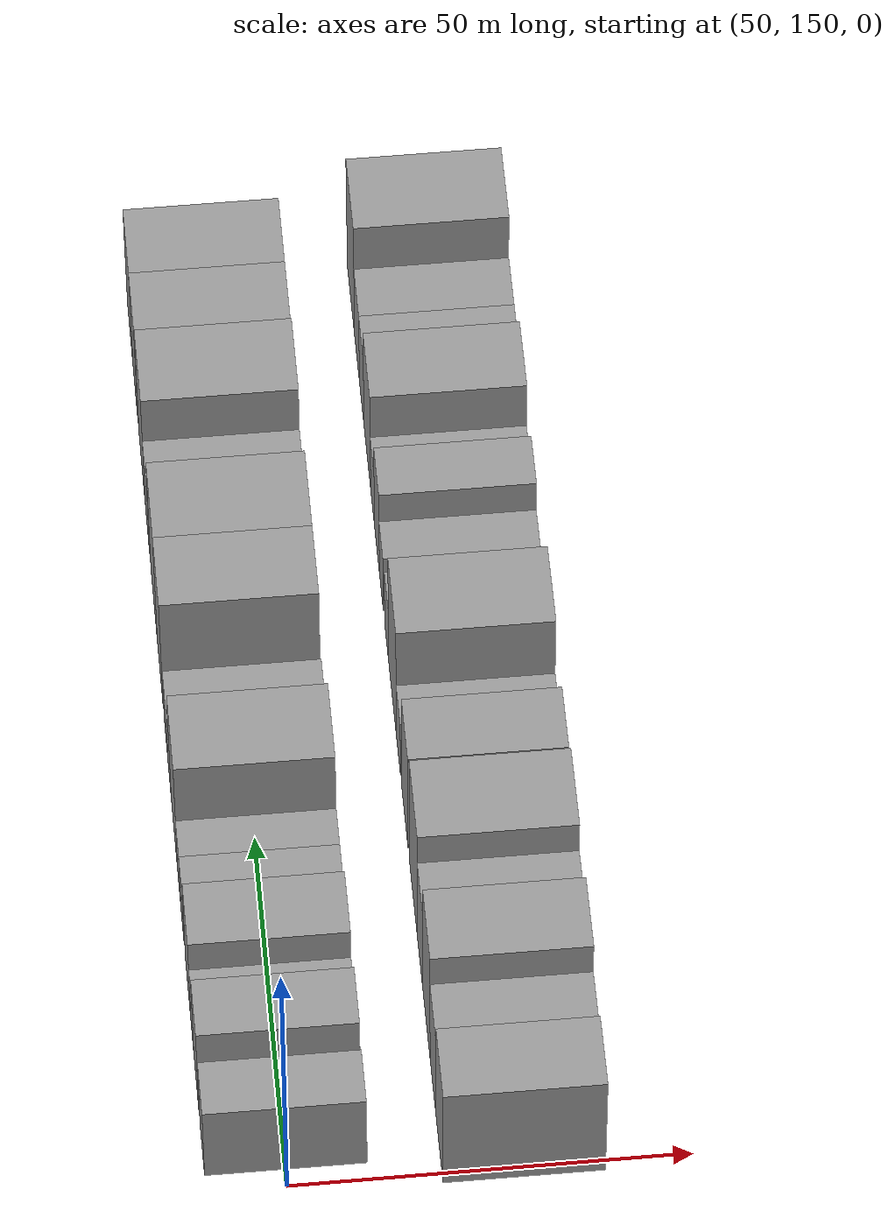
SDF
<sdf version="1.6">
 <world name="default">
  <model name="building_45">
   <static>1</static>
   <pose>50.0000 156.0411 0 0.000000 0.000000 0.000000</pose>
   <link name="link">
    <pose>0 0 7.50 0 0 0</pose>
    <collision name="collision"><geometry><box><size>20.0000 7.3334 15.0000</size></box></geometry></collision>
    <visual name="visual">
     <cast_shadows>0</cast_shadows>
     <geometry><box><size>20.0000 7.3334 15.0000</size></box></geometry>
     <material>
      <script>
       <uri>model://grey_wall/materials/scripts</uri>
       <uri>model://grey_wall/materials/textures</uri>
       <name>vrc/grey_wall</name>
      </script>
     </material>
    </visual>
   </link>
  </model>
  <model name="building_46">
   <static>1</static>
   <pose>50.0000 165.6689 0 0.000000 0.000000 0.000000</pose>
   <link name="link">
    <pose>0 0 9.00 0 0 0</pose>
    <collision name="collision"><geometry><box><size>20.0000 7.9223 18.0000</size></box></geometry></collision>
    <visual name="visual">
     <cast_shadows>0</cast_shadows>
     <geometry><box><size>20.0000 7.9223 18.0000</size></box></geometry>
     <material>
      <script>
       <uri>model://grey_wall/materials/scripts</uri>
       <uri>model://grey_wall/materials/textures</uri>
       <name>vrc/grey_wall</name>
      </script>
     </material>
    </visual>
   </link>
  </model>
  <model name="building_47">
   <static>1</static>
   <pose>50.0000 172.1185 0 0.000000 0.000000 0.000000</pose>
   <link name="link">
    <pose>0 0 6.00 0 0 0</pose>
    <collision name="collision"><geometry><box><size>20.0000 4.9769 12.0000</size></box></geometry></collision>
    <visual name="visual">
     <cast_shadows>0</cast_shadows>
     <geometry><box><size>20.0000 4.9769 12.0000</size></box></geometry>
     <material>
      <script>
       <uri>model://grey_wall/materials/scripts</uri>
       <uri>model://grey_wall/materials/textures</uri>
       <name>vrc/grey_wall</name>
      </script>
     </material>
    </visual>
   </link>
  </model>
  <model name="building_48">
   <static>1</static>
   <pose>50.0000 178.9828 0 0.000000 0.000000 0.000000</pose>
   <link name="link">
    <pose>0 0 9.00 0 0 0</pose>
    <collision name="collision"><geometry><box><size>20.0000 8.7516 18.0000</size></box></geometry></collision>
    <visual name="visual">
     <cast_shadows>0</cast_shadows>
     <geometry><box><size>20.0000 8.7516 18.0000</size></box></geometry>
     <material>
      <script>
       <uri>model://grey_wall/materials/scripts</uri>
       <uri>model://grey_wall/materials/textures</uri>
       <name>vrc/grey_wall</name>
      </script>
     </material>
    </visual>
   </link>
  </model>
  <model name="building_49">
   <static>1</static>
   <pose>50.0000 188.1513 0 0.000000 0.000000 0.000000</pose>
   <link name="link">
    <pose>0 0 6.00 0 0 0</pose>
    <collision name="collision"><geometry><box><size>20.0000 5.5853 12.0000</size></box></geometry></collision>
    <visual name="visual">
     <cast_shadows>0</cast_shadows>
     <geometry><box><size>20.0000 5.5853 12.0000</size></box></geometry>
     <material>
      <script>
       <uri>model://grey_wall/materials/scripts</uri>
       <uri>model://grey_wall/materials/textures</uri>
       <name>vrc/grey_wall</name>
      </script>
     </material>
    </visual>
   </link>
  </model>
  <model name="building_50">
   <static>1</static>
   <pose>50.0000 193.5602 0 0.000000 0.000000 0.000000</pose>
   <link name="link">
    <pose>0 0 6.00 0 0 0</pose>
    <collision name="collision"><geometry><box><size>20.0000 5.2325 12.0000</size></box></geometry></collision>
    <visual name="visual">
     <cast_shadows>0</cast_shadows>
     <geometry><box><size>20.0000 5.2325 12.0000</size></box></geometry>
     <material>
      <script>
       <uri>model://grey_wall/materials/scripts</uri>
       <uri>model://grey_wall/materials/textures</uri>
       <name>vrc/grey_wall</name>
      </script>
     </material>
    </visual>
   </link>
  </model>
  <model name="building_51">
   <static>1</static>
   <pose>50.0000 201.5715 0 0.000000 0.000000 0.000000</pose>
   <link name="link">
    <pose>0 0 12.00 0 0 0</pose>
    <collision name="collision"><geometry><box><size>20.0000 10.7901 24.0000</size></box></geometry></collision>
    <visual name="visual">
     <cast_shadows>0</cast_shadows>
     <geometry><box><size>20.0000 10.7901 24.0000</size></box></geometry>
     <material>
      <script>
       <uri>model://grey_wall/materials/scripts</uri>
       <uri>model://grey_wall/materials/textures</uri>
       <name>vrc/grey_wall</name>
      </script>
     </material>
    </visual>
   </link>
  </model>
  <model name="building_52">
   <static>1</static>
   <pose>50.0000 209.6448 0 0.000000 0.000000 0.000000</pose>
   <link name="link">
    <pose>0 0 6.00 0 0 0</pose>
    <collision name="collision"><geometry><box><size>20.0000 5.3565 12.0000</size></box></geometry></collision>
    <visual name="visual">
     <cast_shadows>0</cast_shadows>
     <geometry><box><size>20.0000 5.3565 12.0000</size></box></geometry>
     <material>
      <script>
       <uri>model://grey_wall/materials/scripts</uri>
       <uri>model://grey_wall/materials/textures</uri>
       <name>vrc/grey_wall</name>
      </script>
     </material>
    </visual>
   </link>
  </model>
  <model name="building_53">
   <static>1</static>
   <pose>50.0000 215.2984 0 0.000000 0.000000 0.000000</pose>
   <link name="link">
    <pose>0 0 6.00 0 0 0</pose>
    <collision name="collision"><geometry><box><size>20.0000 5.9508 12.0000</size></box></geometry></collision>
    <visual name="visual">
     <cast_shadows>0</cast_shadows>
     <geometry><box><size>20.0000 5.9508 12.0000</size></box></geometry>
     <material>
      <script>
       <uri>model://grey_wall/materials/scripts</uri>
       <uri>model://grey_wall/materials/textures</uri>
       <name>vrc/grey_wall</name>
      </script>
     </material>
    </visual>
   </link>
  </model>
  <model name="building_54">
   <static>1</static>
   <pose>50.0000 225.3693 0 0.000000 0.000000 0.000000</pose>
   <link name="link">
    <pose>0 0 12.00 0 0 0</pose>
    <collision name="collision"><geometry><box><size>20.0000 10.1909 24.0000</size></box></geometry></collision>
    <visual name="visual">
     <cast_shadows>0</cast_shadows>
     <geometry><box><size>20.0000 10.1909 24.0000</size></box></geometry>
     <material>
      <script>
       <uri>model://grey_wall/materials/scripts</uri>
       <uri>model://grey_wall/materials/textures</uri>
       <name>vrc/grey_wall</name>
      </script>
     </material>
    </visual>
   </link>
  </model>
  <model name="building_55">
   <static>1</static>
   <pose>50.0000 236.1086 0 0.000000 0.000000 0.000000</pose>
   <link name="link">
    <pose>0 0 12.00 0 0 0</pose>
    <collision name="collision"><geometry><box><size>20.0000 11.2876 24.0000</size></box></geometry></collision>
    <visual name="visual">
     <cast_shadows>0</cast_shadows>
     <geometry><box><size>20.0000 11.2876 24.0000</size></box></geometry>
     <material>
      <script>
       <uri>model://grey_wall/materials/scripts</uri>
       <uri>model://grey_wall/materials/textures</uri>
       <name>vrc/grey_wall</name>
      </script>
     </material>
    </visual>
   </link>
  </model>
  <model name="building_56">
   <static>1</static>
   <pose>50.0000 247.4181 0 0.000000 0.000000 0.000000</pose>
   <link name="link">
    <pose>0 0 7.50 0 0 0</pose>
    <collision name="collision"><geometry><box><size>20.0000 7.3316 15.0000</size></box></geometry></collision>
    <visual name="visual">
     <cast_shadows>0</cast_shadows>
     <geometry><box><size>20.0000 7.3316 15.0000</size></box></geometry>
     <material>
      <script>
       <uri>model://grey_wall/materials/scripts</uri>
       <uri>model://grey_wall/materials/textures</uri>
       <name>vrc/grey_wall</name>
      </script>
     </material>
    </visual>
   </link>
  </model>
  <model name="building_57">
   <static>1</static>
   <pose>50.0000 256.5785 0 0.000000 0.000000 0.000000</pose>
   <link name="link">
    <pose>0 0 12.00 0 0 0</pose>
    <collision name="collision"><geometry><box><size>20.0000 10.9893 24.0000</size></box></geometry></collision>
    <visual name="visual">
     <cast_shadows>0</cast_shadows>
     <geometry><box><size>20.0000 10.9893 24.0000</size></box></geometry>
     <material>
      <script>
       <uri>model://grey_wall/materials/scripts</uri>
       <uri>model://grey_wall/materials/textures</uri>
       <name>vrc/grey_wall</name>
      </script>
     </material>
    </visual>
   </link>
  </model>
  <model name="building_58">
   <static>1</static>
   <pose>50.0000 268.5395 0 0.000000 0.000000 0.000000</pose>
   <link name="link">
    <pose>0 0 10.50 0 0 0</pose>
    <collision name="collision"><geometry><box><size>20.0000 8.9328 21.0000</size></box></geometry></collision>
    <visual name="visual">
     <cast_shadows>0</cast_shadows>
     <geometry><box><size>20.0000 8.9328 21.0000</size></box></geometry>
     <material>
      <script>
       <uri>model://grey_wall/materials/scripts</uri>
       <uri>model://grey_wall/materials/textures</uri>
       <name>vrc/grey_wall</name>
      </script>
     </material>
    </visual>
   </link>
  </model>
  <model name="building_59">
   <static>1</static>
   <pose>50.0000 277.9779 0 0.000000 0.000000 0.000000</pose>
   <link name="link">
    <pose>0 0 10.50 0 0 0</pose>
    <collision name="collision"><geometry><box><size>20.0000 9.9439 21.0000</size></box></geometry></collision>
    <visual name="visual">
     <cast_shadows>0</cast_shadows>
     <geometry><box><size>20.0000 9.9439 21.0000</size></box></geometry>
     <material>
      <script>
       <uri>model://grey_wall/materials/scripts</uri>
       <uri>model://grey_wall/materials/textures</uri>
       <name>vrc/grey_wall</name>
      </script>
     </material>
    </visual>
   </link>
  </model>
  <model name="building_106">
   <static>1</static>
   <pose>79.0000 153.5166 0 0.000000 0.000000 0.000000</pose>
   <link name="link">
    <pose>0 0 10.50 0 0 0</pose>
    <collision name="collision"><geometry><box><size>20.0000 9.5900 21.0000</size></box></geometry></collision>
    <visual name="visual">
     <cast_shadows>0</cast_shadows>
     <geometry><box><size>20.0000 9.5900 21.0000</size></box></geometry>
     <material>
      <script>
       <uri>model://grey_wall/materials/scripts</uri>
       <uri>model://grey_wall/materials/textures</uri>
       <name>vrc/grey_wall</name>
      </script>
     </material>
    </visual>
   </link>
  </model>
  <model name="building_107">
   <static>1</static>
   <pose>79.0000 162.3363 0 0.000000 0.000000 0.000000</pose>
   <link name="link">
    <pose>0 0 9.00 0 0 0</pose>
    <collision name="collision"><geometry><box><size>20.0000 8.0494 18.0000</size></box></geometry></collision>
    <visual name="visual">
     <cast_shadows>0</cast_shadows>
     <geometry><box><size>20.0000 8.0494 18.0000</size></box></geometry>
     <material>
      <script>
       <uri>model://grey_wall/materials/scripts</uri>
       <uri>model://grey_wall/materials/textures</uri>
       <name>vrc/grey_wall</name>
      </script>
     </material>
    </visual>
   </link>
  </model>
  <model name="building_108">
   <static>1</static>
   <pose>79.0000 171.2956 0 0.000000 0.000000 0.000000</pose>
   <link name="link">
    <pose>0 0 12.00 0 0 0</pose>
    <collision name="collision"><geometry><box><size>20.0000 9.8692 24.0000</size></box></geometry></collision>
    <visual name="visual">
     <cast_shadows>0</cast_shadows>
     <geometry><box><size>20.0000 9.8692 24.0000</size></box></geometry>
     <material>
      <script>
       <uri>model://grey_wall/materials/scripts</uri>
       <uri>model://grey_wall/materials/textures</uri>
       <name>vrc/grey_wall</name>
      </script>
     </material>
    </visual>
   </link>
  </model>
  <model name="building_109">
   <static>1</static>
   <pose>79.0000 179.9773 0 0.000000 0.000000 0.000000</pose>
   <link name="link">
    <pose>0 0 9.00 0 0 0</pose>
    <collision name="collision"><geometry><box><size>20.0000 7.4942 18.0000</size></box></geometry></collision>
    <visual name="visual">
     <cast_shadows>0</cast_shadows>
     <geometry><box><size>20.0000 7.4942 18.0000</size></box></geometry>
     <material>
      <script>
       <uri>model://grey_wall/materials/scripts</uri>
       <uri>model://grey_wall/materials/textures</uri>
       <name>vrc/grey_wall</name>
      </script>
     </material>
    </visual>
   </link>
  </model>
  <model name="building_110">
   <static>1</static>
   <pose>79.0000 189.2990 0 0.000000 0.000000 0.000000</pose>
   <link name="link">
    <pose>0 0 12.00 0 0 0</pose>
    <collision name="collision"><geometry><box><size>20.0000 11.1493 24.0000</size></box></geometry></collision>
    <visual name="visual">
     <cast_shadows>0</cast_shadows>
     <geometry><box><size>20.0000 11.1493 24.0000</size></box></geometry>
     <material>
      <script>
       <uri>model://grey_wall/materials/scripts</uri>
       <uri>model://grey_wall/materials/textures</uri>
       <name>vrc/grey_wall</name>
      </script>
     </material>
    </visual>
   </link>
  </model>
  <model name="building_111">
   <static>1</static>
   <pose>79.0000 201.3029 0 0.000000 0.000000 0.000000</pose>
   <link name="link">
    <pose>0 0 10.50 0 0 0</pose>
    <collision name="collision"><geometry><box><size>20.0000 8.8585 21.0000</size></box></geometry></collision>
    <visual name="visual">
     <cast_shadows>0</cast_shadows>
     <geometry><box><size>20.0000 8.8585 21.0000</size></box></geometry>
     <material>
      <script>
       <uri>model://grey_wall/materials/scripts</uri>
       <uri>model://grey_wall/materials/textures</uri>
       <name>vrc/grey_wall</name>
      </script>
     </material>
    </visual>
   </link>
  </model>
  <model name="building_112">
   <static>1</static>
   <pose>79.0000 210.6109 0 0.000000 0.000000 0.000000</pose>
   <link name="link">
    <pose>0 0 6.00 0 0 0</pose>
    <collision name="collision"><geometry><box><size>20.0000 5.7574 12.0000</size></box></geometry></collision>
    <visual name="visual">
     <cast_shadows>0</cast_shadows>
     <geometry><box><size>20.0000 5.7574 12.0000</size></box></geometry>
     <material>
      <script>
       <uri>model://grey_wall/materials/scripts</uri>
       <uri>model://grey_wall/materials/textures</uri>
       <name>vrc/grey_wall</name>
      </script>
     </material>
    </visual>
   </link>
  </model>
  <model name="building_113">
   <static>1</static>
   <pose>79.0000 219.0923 0 0.000000 0.000000 0.000000</pose>
   <link name="link">
    <pose>0 0 12.00 0 0 0</pose>
    <collision name="collision"><geometry><box><size>20.0000 11.2054 24.0000</size></box></geometry></collision>
    <visual name="visual">
     <cast_shadows>0</cast_shadows>
     <geometry><box><size>20.0000 11.2054 24.0000</size></box></geometry>
     <material>
      <script>
       <uri>model://grey_wall/materials/scripts</uri>
       <uri>model://grey_wall/materials/textures</uri>
       <name>vrc/grey_wall</name>
      </script>
     </material>
    </visual>
   </link>
  </model>
  <model name="building_114">
   <static>1</static>
   <pose>79.0000 227.5919 0 0.000000 0.000000 0.000000</pose>
   <link name="link">
    <pose>0 0 6.00 0 0 0</pose>
    <collision name="collision"><geometry><box><size>20.0000 5.7938 12.0000</size></box></geometry></collision>
    <visual name="visual">
     <cast_shadows>0</cast_shadows>
     <geometry><box><size>20.0000 5.7938 12.0000</size></box></geometry>
     <material>
      <script>
       <uri>model://grey_wall/materials/scripts</uri>
       <uri>model://grey_wall/materials/textures</uri>
       <name>vrc/grey_wall</name>
      </script>
     </material>
    </visual>
   </link>
  </model>
  <model name="building_115">
   <static>1</static>
   <pose>79.0000 235.3199 0 0.000000 0.000000 0.000000</pose>
   <link name="link">
    <pose>0 0 6.00 0 0 0</pose>
    <collision name="collision"><geometry><box><size>20.0000 5.6623 12.0000</size></box></geometry></collision>
    <visual name="visual">
     <cast_shadows>0</cast_shadows>
     <geometry><box><size>20.0000 5.6623 12.0000</size></box></geometry>
     <material>
      <script>
       <uri>model://grey_wall/materials/scripts</uri>
       <uri>model://grey_wall/materials/textures</uri>
       <name>vrc/grey_wall</name>
      </script>
     </material>
    </visual>
   </link>
  </model>
  <model name="building_116">
   <static>1</static>
   <pose>79.0000 241.7814 0 0.000000 0.000000 0.000000</pose>
   <link name="link">
    <pose>0 0 9.00 0 0 0</pose>
    <collision name="collision"><geometry><box><size>20.0000 7.2608 18.0000</size></box></geometry></collision>
    <visual name="visual">
     <cast_shadows>0</cast_shadows>
     <geometry><box><size>20.0000 7.2608 18.0000</size></box></geometry>
     <material>
      <script>
       <uri>model://grey_wall/materials/scripts</uri>
       <uri>model://grey_wall/materials/textures</uri>
       <name>vrc/grey_wall</name>
      </script>
     </material>
    </visual>
   </link>
  </model>
  <model name="building_117">
   <static>1</static>
   <pose>79.0000 248.2467 0 0.000000 0.000000 0.000000</pose>
   <link name="link">
    <pose>0 0 6.00 0 0 0</pose>
    <collision name="collision"><geometry><box><size>20.0000 5.6698 12.0000</size></box></geometry></collision>
    <visual name="visual">
     <cast_shadows>0</cast_shadows>
     <geometry><box><size>20.0000 5.6698 12.0000</size></box></geometry>
     <material>
      <script>
       <uri>model://grey_wall/materials/scripts</uri>
       <uri>model://grey_wall/materials/textures</uri>
       <name>vrc/grey_wall</name>
      </script>
     </material>
    </visual>
   </link>
  </model>
  <model name="building_118">
   <static>1</static>
   <pose>79.0000 256.0447 0 0.000000 0.000000 0.000000</pose>
   <link name="link">
    <pose>0 0 10.50 0 0 0</pose>
    <collision name="collision"><geometry><box><size>20.0000 9.9264 21.0000</size></box></geometry></collision>
    <visual name="visual">
     <cast_shadows>0</cast_shadows>
     <geometry><box><size>20.0000 9.9264 21.0000</size></box></geometry>
     <material>
      <script>
       <uri>model://grey_wall/materials/scripts</uri>
       <uri>model://grey_wall/materials/textures</uri>
       <name>vrc/grey_wall</name>
      </script>
     </material>
    </visual>
   </link>
  </model>
  <model name="building_119">
   <static>1</static>
   <pose>79.0000 264.4186 0 0.000000 0.000000 0.000000</pose>
   <link name="link">
    <pose>0 0 7.50 0 0 0</pose>
    <collision name="collision"><geometry><box><size>20.0000 6.8213 15.0000</size></box></geometry></collision>
    <visual name="visual">
     <cast_shadows>0</cast_shadows>
     <geometry><box><size>20.0000 6.8213 15.0000</size></box></geometry>
     <material>
      <script>
       <uri>model://grey_wall/materials/scripts</uri>
       <uri>model://grey_wall/materials/textures</uri>
       <name>vrc/grey_wall</name>
      </script>
     </material>
    </visual>
   </link>
  </model>
  <model name="building_120">
   <static>1</static>
   <pose>79.0000 271.5096 0 0.000000 0.000000 0.000000</pose>
   <link name="link">
    <pose>0 0 7.50 0 0 0</pose>
    <collision name="collision"><geometry><box><size>20.0000 7.3607 15.0000</size></box></geometry></collision>
    <visual name="visual">
     <cast_shadows>0</cast_shadows>
     <geometry><box><size>20.0000 7.3607 15.0000</size></box></geometry>
     <material>
      <script>
       <uri>model://grey_wall/materials/scripts</uri>
       <uri>model://grey_wall/materials/textures</uri>
       <name>vrc/grey_wall</name>
      </script>
     </material>
    </visual>
   </link>
  </model>
  <model name="building_121">
   <static>1</static>
   <pose>79.0000 280.6705 0 0.000000 0.000000 0.000000</pose>
   <link name="link">
    <pose>0 0 12.00 0 0 0</pose>
    <collision name="collision"><geometry><box><size>20.0000 10.9610 24.0000</size></box></geometry></collision>
    <visual name="visual">
     <cast_shadows>0</cast_shadows>
     <geometry><box><size>20.0000 10.9610 24.0000</size></box></geometry>
     <material>
      <script>
       <uri>model://grey_wall/materials/scripts</uri>
       <uri>model://grey_wall/materials/textures</uri>
       <name>vrc/grey_wall</name>
      </script>
     </material>
    </visual>
   </link>
  </model>
 </world>
</sdf>
